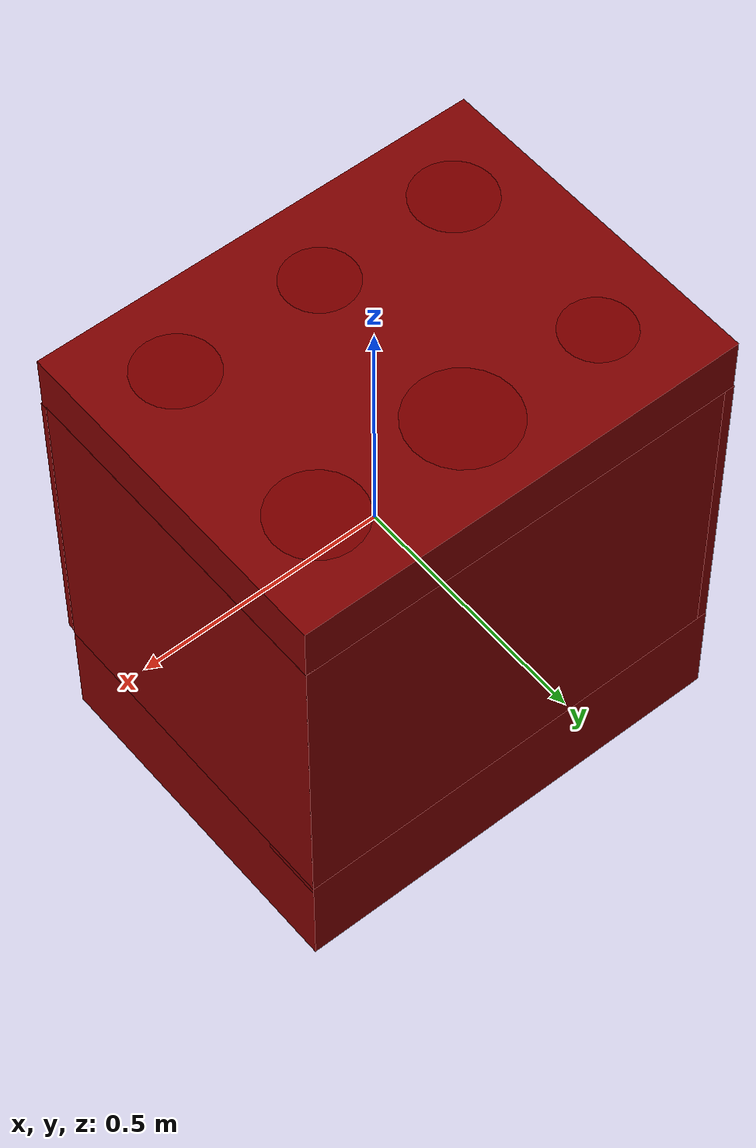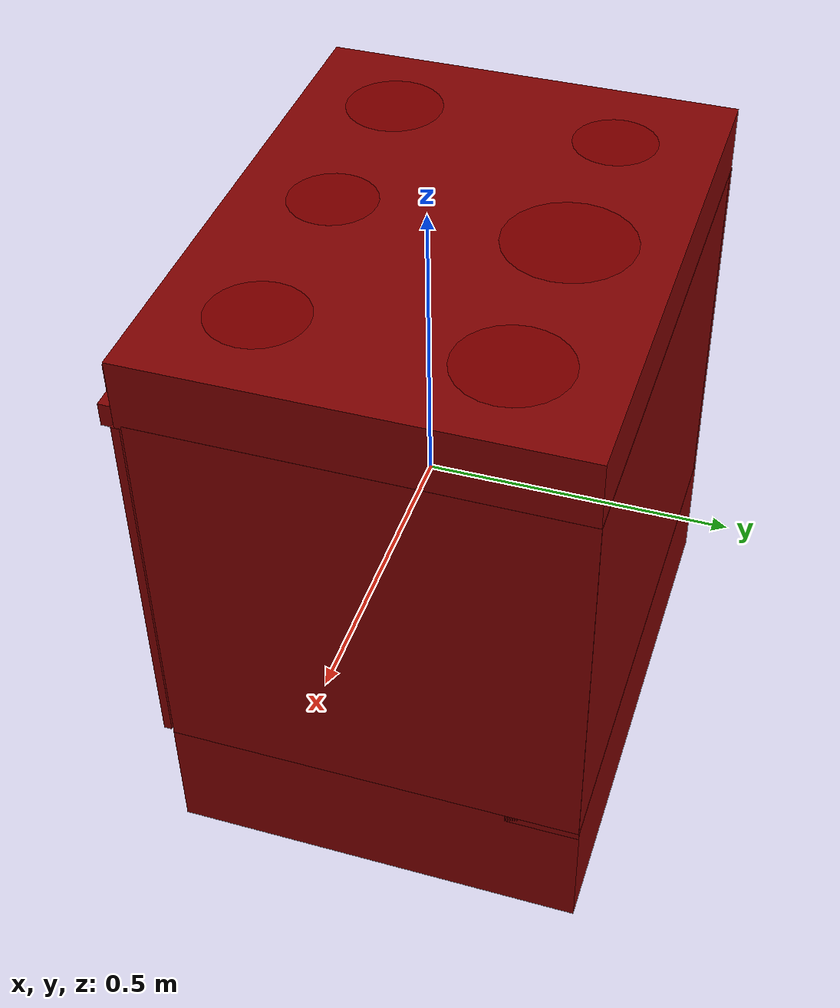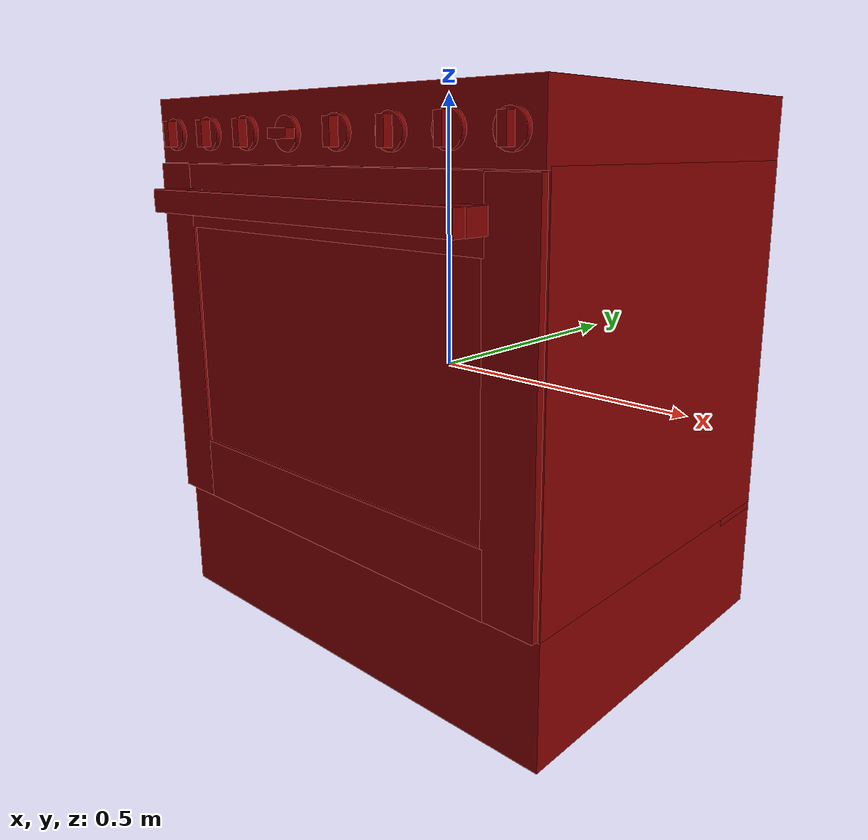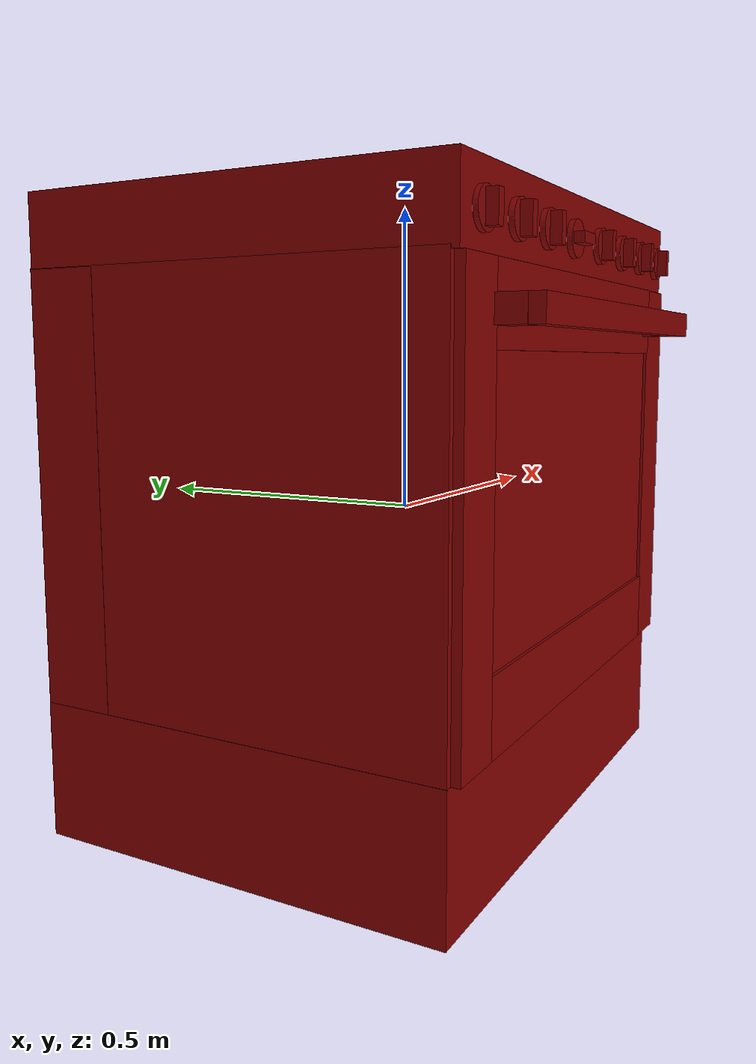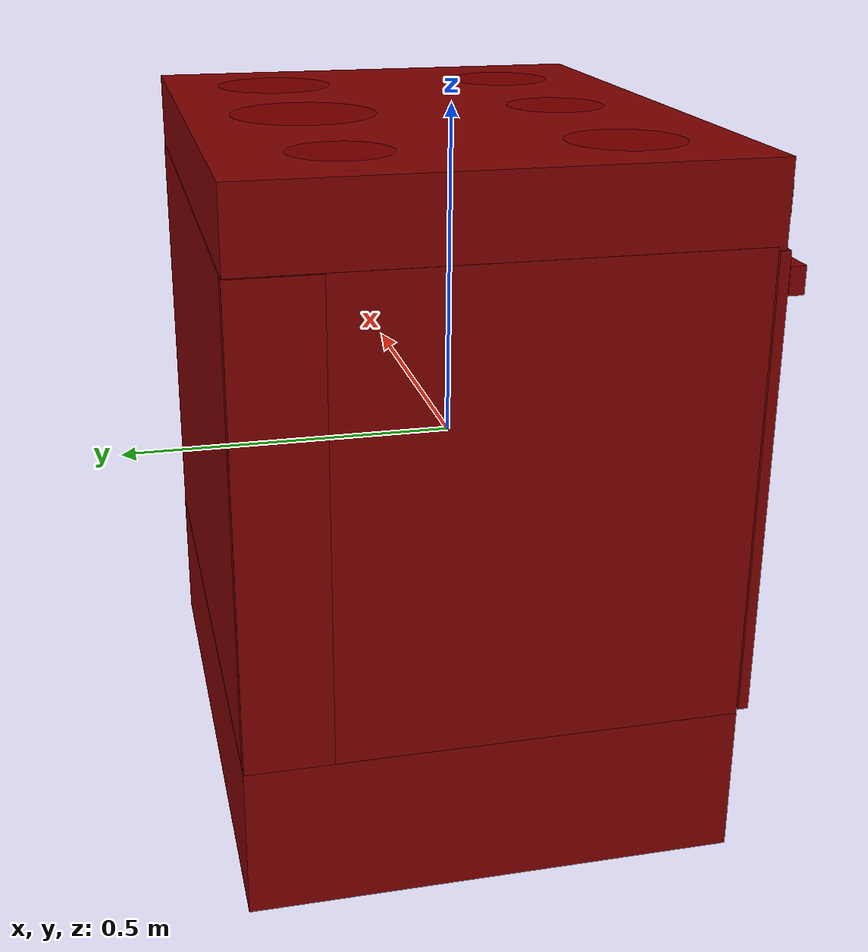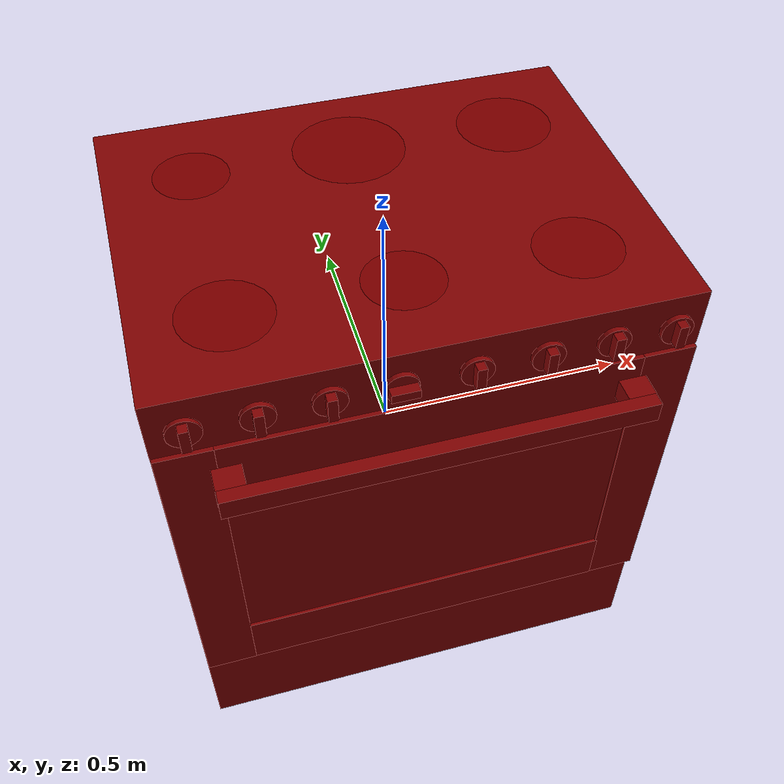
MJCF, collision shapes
<?xml version='1.0' encoding='UTF-8'?>
<mujoco model="model">
  <option timestep="0.002" gravity="0.0 0.0 -9.81"/>
  <compiler angle="radian"/>
  <asset>
    <mesh file="visuals/door.obj" name="door_vis"/>
    <mesh file="visuals/door_Clear.obj" name="door_Clear_vis"/>
    <mesh file="visuals/knob_front_center.obj" name="knob_front_center_vis"/>
    <mesh file="visuals/knob_front_left.obj" name="knob_front_left_vis"/>
    <mesh file="visuals/knob_front_right.obj" name="knob_front_right_vis"/>
    <mesh file="visuals/knob_rear_center.obj" name="knob_rear_center_vis"/>
    <mesh file="visuals/knob_rear_left.obj" name="knob_rear_left_vis"/>
    <mesh file="visuals/knob_rear_right.obj" name="knob_rear_right_vis"/>
    <mesh file="visuals/knob_temp.obj" name="knob_temp_vis"/>
    <mesh file="visuals/knob_time.obj" name="knob_time_vis"/>
    <mesh file="visuals/rack0.obj" name="rack0_vis"/>
    <mesh file="visuals/Body001.obj" name="Body001_vis"/>
    <texture file="visuals/T_BC001.png" name="Body001_material" type="2d"/>
    <material name="Body001_material" rgba="1 1 1 1.0" texture="Body001_material" shininess="0.141421377658844" specular="2"/>
    <texture file="visuals/T_BC001.png" name="door_material" type="2d"/>
    <material name="door_material" rgba="1 1 1 1.0" texture="door_material" shininess="0.141421377658844" specular="2"/>
    <material name="door_Clear_material" rgba="0.031017949804663658 0.031017949804663658 0.031017949804663658 0.800000011920929" shininess="0.5" specular="0.3103448502657381"/>
    <texture file="visuals/T_BC001.png" name="knob_front_center_material" type="2d"/>
    <material name="knob_front_center_material" rgba="1 1 1 1.0" texture="knob_front_center_material" shininess="0.141421377658844" specular="0.3103448502657381"/>
    <texture file="visuals/T_BC001.png" name="knob_front_left_material" type="2d"/>
    <material name="knob_front_left_material" rgba="1 1 1 1.0" texture="knob_front_left_material" shininess="0.141421377658844" specular="0.3103448502657381"/>
    <texture file="visuals/T_BC001.png" name="knob_front_right_material" type="2d"/>
    <material name="knob_front_right_material" rgba="1 1 1 1.0" texture="knob_front_right_material" shininess="0.141421377658844" specular="0.3103448502657381"/>
    <texture file="visuals/T_BC001.png" name="knob_rear_center_material" type="2d"/>
    <material name="knob_rear_center_material" rgba="1 1 1 1.0" texture="knob_rear_center_material" shininess="0.141421377658844" specular="0.3103448502657381"/>
    <texture file="visuals/T_BC001.png" name="knob_rear_left_material" type="2d"/>
    <material name="knob_rear_left_material" rgba="1 1 1 1.0" texture="knob_rear_left_material" shininess="0.141421377658844" specular="0.3103448502657381"/>
    <texture file="visuals/T_BC001.png" name="knob_rear_right_material" type="2d"/>
    <material name="knob_rear_right_material" rgba="1 1 1 1.0" texture="knob_rear_right_material" shininess="0.141421377658844" specular="0.3103448502657381"/>
    <texture file="visuals/T_BC001.png" name="knob_temp_material" type="2d"/>
    <material name="knob_temp_material" rgba="1 1 1 1.0" texture="knob_temp_material" shininess="0.141421377658844" specular="0.3103448502657381"/>
    <texture file="visuals/T_BC001.png" name="knob_time_material" type="2d"/>
    <material name="knob_time_material" rgba="1 1 1 1.0" texture="knob_time_material" shininess="0.141421377658844" specular="0.3103448502657381"/>
    <texture file="visuals/T_BC001.png" name="rack0_material" type="2d"/>
    <material name="rack0_material" rgba="1 1 1 1.0" texture="rack0_material" shininess="0.141421377658844" specular="4"/>
  </asset>
  <default>
    <default class="visual">
      <geom conaffinity="0" contype="0" group="1" type="mesh"/>
    </default>
    <default class="collision">
      <geom group="0" rgba="0.5 0 0 0.5"/>
    </default>
    <default class="spawn">
      <geom group="0" rgba="1 1 1 0.5" contype="0" conaffinity="0"/>
      <site group="0" rgba="1 1 1 0.5"/>
    </default>
    <default class="region">
      <geom group="1" conaffinity="0" contype="0" rgba="0 1 0 0"/>
    </default>
  </default>
  <worldbody>
    <body>
      <body name="object">
        <geom mesh="Body001_vis" type="mesh" solimp="0.998 0.998 0.001" solref="0.001 1" friction="0.95 0.3 0.1" class="visual" material="Body001_material"/>
        <geom type="box" pos="0.00028338 0.03634821 0.43514690" size="0.4514167308807373 0.34686827659606934 0.05753197520971298" quat="1.0 0.0 0.0 0.0" class="collision"/>
        <geom type="box" pos="-0.44153196 0.04244455 0.05228723" size="0.010310623794794083 0.34188374876976013 0.3301837742328644" quat="1.0 0.0 0.0 0.0" class="collision"/>
        <geom type="box" pos="0.44149959 0.04216448 0.05228723" size="0.010346956551074982 0.3416036367416382 0.3301837742328644" quat="1.0 0.0 0.0 0.0" class="collision"/>
        <geom type="box" pos="-0.00015452 0.04239556 -0.38577986" size="0.45190566778182983 0.34237968921661377 0.1077851951122284" quat="1.0 0.0 0.0 0.0" class="collision"/>
        <geom type="box" pos="-0.00015452 0.32383448 0.04532160" size="0.45190566778182983 0.06021558493375778 0.3362036645412445" quat="1.0 0.0 0.0 0.0" class="collision"/>
        <geom type="box" pos="-0.42228284 -0.01988998 0.04351621" size="0.011850203387439251 0.2790737450122833 0.005543030332773924" quat="1.0 0.0 0.0 0.0" class="collision"/>
        <geom type="box" pos="0.42104155 -0.01988998 0.04351621" size="0.011850222013890743 0.27880749106407166 0.005543030332773924" quat="1.0 0.0 0.0 0.0" class="collision"/>
        <geom type="box" pos="-0.00054063 0.04146662 -0.26905969" size="0.4329325556755066 0.3408835530281067 0.008406330831348896" quat="1.0 0.0 0.0 0.0" class="collision"/>
        <geom type="box" pos="-0.00054063 0.04146662 0.37403580" size="0.4329325556755066 0.3408835530281067 0.008406330831348896" quat="1.0 0.0 0.0 0.0" class="collision"/>
        <body name="door">
          <joint axis="1.0 0.0 0.0" pos="-0.00009064 -0.30194843 -0.27316007" limited="true" name="door_joint" range="0.0 1.5707963267948966" type="hinge" damping="1" frictionloss="1" armature=".01" stiffness="3" springref="-5"/>
          <geom mesh="door_vis" type="mesh" solimp="0.998 0.998 0.001" solref="0.001 1" friction="0.95 0.3 0.1" class="visual" material="door_material"/>
          <geom type="box" pos="-0.40240356 -0.31044161 0.05132460" size="0.04731027036905289 0.007200020831078291 0.3253009617328644" quat="1.0 0.0 0.0 0.0" class="collision"/>
          <geom class="collision" type="box" pos="-0.00033920 -0.37317455 0.31238147" size="0.36537522077560425 0.012222813442349434 0.02002202905714512" quat="1.0 0.0 0.0 0.0" name="door_handle_main"/>
          <geom class="collision" type="box" pos="-0.34228083 -0.34022784 0.31238147" size="0.02437002584338188 0.02187464013695717 0.020021872594952583" quat="1.0 0.0 0.0 0.0" name="door_handle_Collider1"/>
          <geom class="collision" type="box" pos="0.34151396 -0.34022784 0.31238147" size="0.02436581440269947 0.02187466248869896 0.020021893084049225" quat="1.0 0.0 0.0 0.0" name="door_handle_Collider2"/>
          <geom type="box" pos="0.40161824 -0.30992436 0.05110907" size="0.048891905695199966 0.006682884879410267 0.32441550493240356" quat="1.0 0.0 0.0 0.0" class="collision"/>
          <geom class="collision" type="box" pos="-0.00242631 -0.30976486 0.31926283" size="0.35925033688545227 0.007834212854504585 0.05718306452035904" quat="1.0 0.0 0.0 0.0" name="door_main"/>
          <geom type="box" pos="-0.00242631 -0.31002104 -0.21625242" size="0.35925033688545227 0.006779652088880539 0.05810556933283806" quat="1.0 0.0 0.0 0.0" class="collision"/>
          <geom class="collision" type="box" pos="0.00000000 -0.30973607 0.04938825" size="0.3598848581314087 0.0016330376965925097 0.21378108859062195" quat="1.0 0.0 0.0 0.0"/>
          <body name="door_Clear">
            <geom mesh="door_Clear_vis" type="mesh" solimp="0.998 0.998 0.001" solref="0.001 1" friction="0.95 0.3 0.1" class="visual" material="door_Clear_material"/>
            <geom type="box" pos="0.00000000 -0.30973607 0.04938825" size="0.3598848581314087 0.0016330376965925097 0.21378108859062195" quat="1.0 0.0 0.0 0.0" class="collision"/>
          </body>
        </body>
        <body name="knob_front_center">
          <joint axis="0.0 -1.0 0.0" pos="-0.17115234 -0.32115713 0.42865416" limited="true" name="knob_front_center_joint" range="0.0 3.141592653589793" type="hinge" damping="0.05" armature="1" frictionloss="0.75"/>
          <geom mesh="knob_front_center_vis" type="mesh" solimp="0.998 0.998 0.001" solref="0.001 1" friction="0.95 0.3 0.1" class="visual" material="knob_front_center_material"/>
          <geom type="cylinder" pos="-0.17094125 -0.31552473 0.42881664" size="0.028262391686439514 0.00432845251634717" quat="0.7071068286895752 0.7071067690849304 0.0 0.0" class="collision" friction="100 0.5 0.01"/>
          <geom type="box" pos="-0.17134398 -0.32688203 0.42940947" size="0.008009856566786766 0.010289488360285759 0.02292594127357006" quat="1.0 0.0 0.0 0.0" class="collision" name="knob_front_center_main" friction="100 0.5 0.01"/>
        </body>
        <body name="knob_front_left">
          <joint axis="0.0 -1.0 0.0" pos="-0.39335841 -0.32115713 0.42865416" limited="true" name="knob_front_left_joint" range="0.0 3.141592653589793" type="hinge" damping="0.05" frictionloss="0.75" armature="1"/>
          <geom mesh="knob_front_left_vis" type="mesh" solimp="0.998 0.998 0.001" solref="0.001 1" friction="0.95 0.3 0.1" class="visual" material="knob_front_left_material"/>
          <geom type="cylinder" pos="-0.39350110 -0.31608605 0.42854550" size="0.028508616611361504 0.003767132991924882" quat="0.7071068286895752 0.7071067690849304 0.0 0.0" class="collision" friction="100 0.5 0.01"/>
          <geom type="box" pos="-0.39342573 -0.32864359 0.42941352" size="0.00791201926767826 0.00852782279253006 0.022645851597189903" quat="1.0 0.0 0.0 0.0" class="collision" name="knob_front_left_main" friction="100 0.5 0.01"/>
        </body>
        <body name="knob_front_right">
          <joint axis="0.0 -1.0 0.0" pos="0.40259871 -0.32115713 0.42757660" limited="true" name="knob_front_right_joint" range="0.0 3.141592653589793" type="hinge" damping="0.05" frictionloss="0.75" armature="1"/>
          <geom mesh="knob_front_right_vis" type="mesh" solimp="0.998 0.998 0.001" solref="0.001 1" friction="0.95 0.3 0.1" class="visual" material="knob_front_right_material"/>
          <geom type="cylinder" pos="0.40223145 -0.31619307 0.42768314" size="0.028150364756584167 0.004574283491820097" quat="0.7071068286895752 0.7071067690849304 0.0 0.0" class="collision" friction="100 0.5 0.01"/>
          <geom type="box" pos="0.40252420 -0.32738572 0.42786151" size="0.007890043780207634 0.010026584379374981 0.022582992911338806" quat="1.0 0.0 0.0 0.0" class="collision" name="knob_front_right_main" friction="100 0.5 0.01"/>
        </body>
        <body name="knob_rear_center">
          <joint axis="0.0 -1.0 0.0" pos="0.18179205 -0.32115713 0.42736110" limited="true" name="knob_rear_center_joint" range="0.0 3.141592653589793" type="hinge" damping="0.05" frictionloss="0.75" armature="1"/>
          <geom mesh="knob_rear_center_vis" type="mesh" solimp="0.998 0.998 0.001" solref="0.001 1" friction="0.95 0.3 0.1" class="visual" material="knob_rear_center_material"/>
          <geom type="cylinder" pos="0.18173189 -0.31578895 0.42734816" size="0.02857975848019123 0.004241303075104952" quat="0.7071068286895752 0.7071067690849304 0.0 0.0" class="collision" friction="100 0.5 0.01"/>
          <geom type="box" pos="0.18175378 -0.32688200 0.42758679" size="0.007984244264662266 0.010342340916395187 0.022852517664432526" quat="1.0 0.0 0.0 0.0" class="collision" name="knob_rear_center_main" friction="100 0.5 0.01"/>
        </body>
        <body name="knob_rear_left">
          <joint axis="0.0 -1.0 0.0" pos="-0.28224891 -0.32115713 0.42865416" limited="true" name="knob_rear_left_joint" range="0.0 3.141592653589793" type="hinge" damping="0.05" armature="1" frictionloss="0.75"/>
          <geom mesh="knob_rear_left_vis" type="mesh" solimp="0.998 0.998 0.001" solref="0.001 1" friction="0.95 0.3 0.1" class="visual" material="knob_rear_left_material"/>
          <geom type="cylinder" pos="-0.28193891 -0.31552473 0.42881664" size="0.028164124116301537 0.00432845251634717" quat="0.7071068286895752 0.7071067690849304 0.0 0.0" class="collision" friction="100 0.5 0.01"/>
          <geom type="box" pos="-0.28239366 -0.32686540 0.42909768" size="0.008049799129366875 0.010342181660234928 0.023040184751152992" quat="1.0 0.0 0.0 0.0" class="collision" name="knob_rear_left_main" friction="100 0.5 0.01"/>
        </body>
        <body name="knob_rear_right">
          <joint axis="0.0 -1.0 0.0" pos="0.29368600 -0.32115713 0.42865416" limited="true" name="knob_rear_right_joint" range="0.0 3.141592653589793" type="hinge" damping="0.05" armature="1" frictionloss="0.75"/>
          <geom mesh="knob_rear_right_vis" type="mesh" solimp="0.998 0.998 0.001" solref="0.001 1" friction="0.95 0.3 0.1" class="visual" material="knob_rear_right_material"/>
          <geom type="cylinder" pos="0.29378194 -0.31557372 0.42871576" size="0.028246823698282242 0.004359787795692682" quat="0.7071068286895752 0.7071067690849304 0.0 0.0" class="collision" friction="100 0.5 0.01"/>
          <geom type="box" pos="0.29377455 -0.32677335 0.42940643" size="0.00819138903170824 0.010637160390615463 0.023445526137948036" quat="1.0 0.0 0.0 0.0" class="collision" name="knob_rear_right_main" friction="100 0.5 0.01"/>
        </body>
        <body name="knob_temp">
          <joint axis="0.0 1.0 0.0" pos="0.06406320 -0.32115713 0.42801860" limited="true" name="knob_temp_joint" range="0.0 5.585053606381854" type="hinge" damping="0.05" armature="1" frictionloss="0.75"/>
          <geom mesh="knob_temp_vis" type="mesh" solimp="0.998 0.998 0.001" solref="0.001 1" friction="0.95 0.3 0.1" class="visual" material="knob_temp_material"/>
          <geom type="cylinder" pos="0.06388007 -0.31575340 0.42782426" size="0.02810702659189701 0.00420789560303092" quat="0.7071068286895752 0.7071067690849304 0.0 0.0" class="collision" friction="100 0.5 0.01"/>
          <geom class="collision" type="box" pos="0.06399853 -0.32688200 0.42839366" size="0.007934430614113808 0.010336258448660374 0.022710038349032402" quat="1.0 0.0 0.0 0.0" name="knob_temp_main" friction="100 0.5 0.01"/>
        </body>
        <body name="knob_time">
          <joint axis="0.0 1.0 0.0" pos="-0.05806289 -0.32115713 0.42714670" limited="true" name="knob_time_joint" range="0.0 5.323254218582705" type="hinge" damping="0.05" frictionloss="0.75" armature="1"/>
          <geom mesh="knob_time_vis" type="mesh" solimp="0.998 0.998 0.001" solref="0.001 1" friction="0.95 0.3 0.1" class="visual" material="knob_time_material"/>
          <geom type="cylinder" pos="-0.05822445 -0.31550816 0.42695307" size="0.028487300500273705 0.004368196707218885" quat="0.7071068286895752 0.7071067690849304 0.0 0.0" class="collision" friction="100 0.5 0.01"/>
          <geom class="collision" type="box" pos="-0.05755528 -0.32667726 0.42701280" size="0.0236478541046381 0.01074894703924656 0.008262105286121368" quat="1.0 0.0 0.0 0.0" name="knob_time_main" friction="100 0.5 0.01"/>
        </body>
        <body name="rack0">
          <geom class="region" name="reg_rack0" type="box" pos="-0.000302295000000008 -0.018486845000000002 0.215573495" size="0.404355375 0.246905385 0.14576063499999997"/>
          <joint axis="0.0 -1.0 0.0" pos="-0.00086140 -0.01989004 0.05241754" limited="true" name="rack0_joint" range="0.0 0.42" type="slide" damping="1" frictionloss="1" armature=".01" stiffness="0.05"/>
          <geom mesh="rack0_vis" type="mesh" solimp="0.998 0.998 0.001" solref="0.001 1" friction="0.95 0.3 0.1" class="visual" material="rack0_material"/>
          <geom type="box" pos="-0.00084670 -0.01988998 0.05702650" size="0.42225053906440735 0.25453394651412964 0.005543030332773924" quat="1.0 0.0 0.0 0.0" class="collision"/>
        </body>
        <geom class="region" name="reg_int" type="box" pos="-0.000302295000000008 -0.018799184999999996 0.052460074999999995" size="0.404355375 0.277924405 0.308874055"/>
        <site type="cylinder" rgba="0.5 0 0 0.5" size="0.08015881478786469 0.0001" pos="-0.29618064 -0.15285218 0.49260899" name="burner_on_front_left"/>
        <site type="cylinder" rgba="0.5 0 0 0.5" size="0.06905944645404816 0.0001" pos="-0.29361540 0.21604398 0.49260899" name="burner_on_rear_left"/>
        <site type="cylinder" rgba="0.5 0 0 0.5" size="0.07800442725419998 0.0001" pos="0.29067743 -0.15274219 0.49260899" name="burner_on_front_right"/>
        <site type="cylinder" rgba="0.5 0 0 0.5" size="0.08874145895242691 0.0001" pos="0.29349366 0.21614487 0.49260899" name="burner_on_rear_right"/>
        <site type="cylinder" rgba="0.5 0 0 0.5" size="0.07100000232458115 0.0001" pos="-0.00827429 -0.15282217 0.49402898" name="burner_on_front_center"/>
        <site type="cylinder" rgba="0.5 0 0 0.5" size="0.10361944139003754 0.0001" pos="-0.00552012 0.21610348 0.49402800" name="burner_on_rear_center"/>
        <site name="burner_front_left_place_site" type="cylinder" rgba="0.5 0 0 0" size="0.08015881478786469 4.999999873689376e-05" pos="-0.29618064 -0.15285218 0.49260899"/>
        <site name="burner_rear_left_place_site" type="cylinder" rgba="0.5 0 0 0" size="0.06905944645404816 4.999999873689376e-05" pos="-0.29361540 0.21604398 0.49260899"/>
        <site name="burner_front_right_place_site" type="cylinder" rgba="0.5 0 0 0" size="0.07800442725419998 4.999999873689376e-05" pos="0.29067743 -0.15274219 0.49260899"/>
        <site name="burner_rear_right_place_site" type="cylinder" rgba="0.5 0 0 0" size="0.08874145895242691 4.999999873689376e-05" pos="0.29349366 0.21614487 0.49260899"/>
        <site name="burner_front_center_place_site" type="cylinder" rgba="0.5 0 0 0" size="0.07100000232458115 4.999999873689376e-05" pos="-0.00827429 -0.15282217 0.49402898"/>
        <site name="burner_rear_center_place_site" type="cylinder" rgba="0.5 0 0 0" size="0.10361944139003754 4.999999873689376e-05" pos="-0.00552012 0.21610348 0.49402800"/>
        <geom class="region" name="reg_main" type="box" pos="9.999999994736442e-09 0.033550575 -1.9999999999992246e-05" size="0.45346479 0.352358415 0.49505348000000005"/>
      </body>
    </body>
  </worldbody>
  <actuator>
    <motor name="door_joint_actuator" joint="door_joint" gear="50"/>
    <motor name="knob_front_center_joint_actuator" joint="knob_front_center_joint" gear="50"/>
    <motor name="knob_front_left_joint_actuator" joint="knob_front_left_joint" gear="50"/>
    <motor name="knob_front_right_joint_actuator" joint="knob_front_right_joint" gear="50"/>
    <motor name="knob_rear_center_joint_actuator" joint="knob_rear_center_joint" gear="50"/>
    <motor name="knob_rear_left_joint_actuator" joint="knob_rear_left_joint" gear="50"/>
    <motor name="knob_rear_right_joint_actuator" joint="knob_rear_right_joint" gear="50"/>
    <motor name="knob_temp_joint_actuator" joint="knob_temp_joint" gear="50"/>
    <motor name="knob_time_joint_actuator" joint="knob_time_joint" gear="50"/>
    <motor name="rack0_joint_actuator" joint="rack0_joint" gear="50"/>
  </actuator>
</mujoco>
